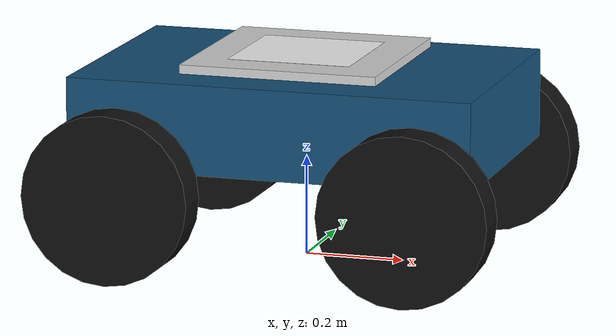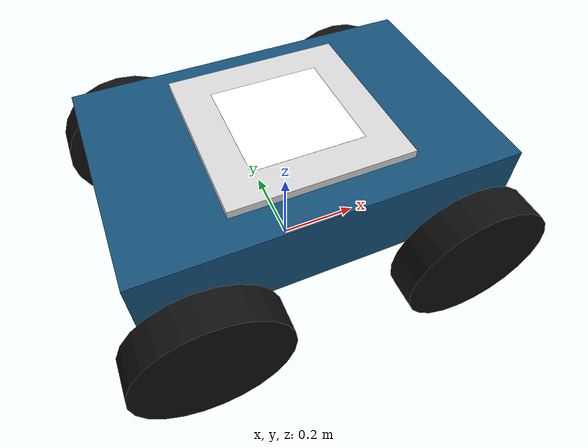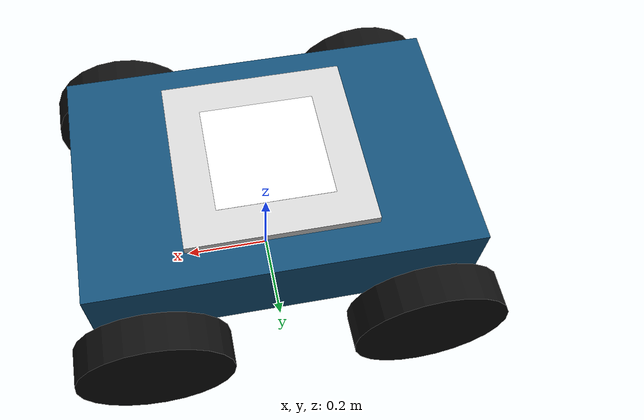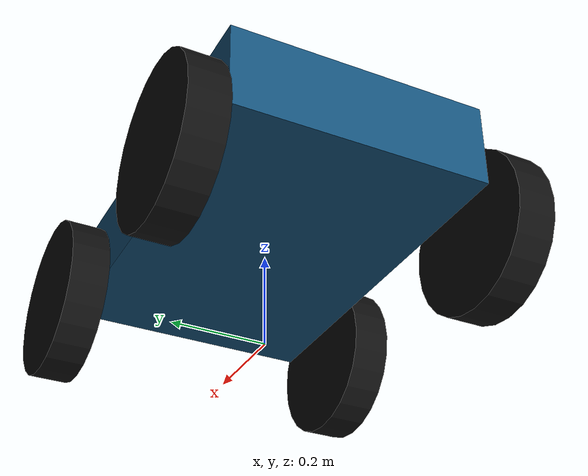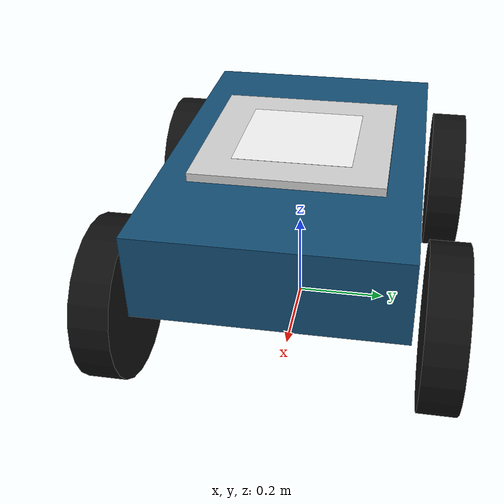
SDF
<?xml version="1.0"?>
<sdf version="1.9">
  <model name="ground_vehicle">
    <pose>0 0 0 0 0 0</pose>

    <link name="base_link">
      <!-- Keep the body collision 40 mm above the ground so the wheels, not
           the chassis belly, carry the vehicle and generate traction. -->
      <pose>0 0 0.30 0 0 0</pose>
      <inertial>
        <mass>18.0</mass>
        <inertia>
          <ixx>0.65</ixx><iyy>1.10</iyy><izz>1.35</izz>
        </inertia>
      </inertial>
      <collision name="body_collision">
        <geometry><box><size>0.82 0.54 0.18</size></box></geometry>
      </collision>
      <visual name="body_visual">
        <geometry><box><size>0.82 0.54 0.18</size></box></geometry>
        <material>
          <ambient>0.05 0.18 0.28 1</ambient>
          <diffuse>0.08 0.32 0.48 1</diffuse>
        </material>
      </visual>
      <visual name="landing_pad">
        <pose>0 0 0.105 0 0 0</pose>
        <geometry><box><size>0.40 0.40 0.018</size></box></geometry>
        <material>
          <ambient>0.75 0.75 0.75 1</ambient>
          <diffuse>0.85 0.85 0.85 1</diffuse>
        </material>
      </visual>
      <!-- Physical target shown in the supplied reference photo:
           tag36h11 ID 0, 200 mm black edge plus a 25 mm white quiet
           border on every side, for a 250 x 250 mm printed board. -->
      <visual name="apriltag_id0">
        <pose>0 0 0.115 0 0 0</pose>
        <geometry><plane><normal>0 0 1</normal><size>0.25 0.25</size></plane></geometry>
        <material>
          <ambient>1 1 1 1</ambient>
          <diffuse>1 1 1 1</diffuse>
          <specular>0 0 0 1</specular>
          <pbr>
            <metal>
              <albedo_map>model://ground_vehicle/materials/textures/tag36h11_id0.png</albedo_map>
              <metalness>0.0</metalness>
              <roughness>1.0</roughness>
            </metal>
          </pbr>
        </material>
      </visual>
    </link>

    <link name="left_front_wheel">
      <pose>0.30 0.33 0.17 1.57079632679 0 0</pose>
      <inertial><mass>1.0</mass><inertia><ixx>0.015</ixx><iyy>0.015</iyy><izz>0.025</izz></inertia></inertial>
      <collision name="collision"><geometry><cylinder><radius>0.17</radius><length>0.08</length></cylinder></geometry><surface><friction><ode><mu>1.2</mu><mu2>1.2</mu2></ode></friction></surface></collision>
      <visual name="visual"><geometry><cylinder><radius>0.17</radius><length>0.08</length></cylinder></geometry><material><ambient>0.03 0.03 0.03 1</ambient><diffuse>0.06 0.06 0.06 1</diffuse></material></visual>
    </link>
    <link name="left_rear_wheel">
      <pose>-0.30 0.33 0.17 1.57079632679 0 0</pose>
      <inertial><mass>1.0</mass><inertia><ixx>0.015</ixx><iyy>0.015</iyy><izz>0.025</izz></inertia></inertial>
      <collision name="collision"><geometry><cylinder><radius>0.17</radius><length>0.08</length></cylinder></geometry><surface><friction><ode><mu>1.2</mu><mu2>1.2</mu2></ode></friction></surface></collision>
      <visual name="visual"><geometry><cylinder><radius>0.17</radius><length>0.08</length></cylinder></geometry><material><ambient>0.03 0.03 0.03 1</ambient><diffuse>0.06 0.06 0.06 1</diffuse></material></visual>
    </link>
    <link name="right_front_wheel">
      <pose>0.30 -0.33 0.17 1.57079632679 0 0</pose>
      <inertial><mass>1.0</mass><inertia><ixx>0.015</ixx><iyy>0.015</iyy><izz>0.025</izz></inertia></inertial>
      <collision name="collision"><geometry><cylinder><radius>0.17</radius><length>0.08</length></cylinder></geometry><surface><friction><ode><mu>1.2</mu><mu2>1.2</mu2></ode></friction></surface></collision>
      <visual name="visual"><geometry><cylinder><radius>0.17</radius><length>0.08</length></cylinder></geometry><material><ambient>0.03 0.03 0.03 1</ambient><diffuse>0.06 0.06 0.06 1</diffuse></material></visual>
    </link>
    <link name="right_rear_wheel">
      <pose>-0.30 -0.33 0.17 1.57079632679 0 0</pose>
      <inertial><mass>1.0</mass><inertia><ixx>0.015</ixx><iyy>0.015</iyy><izz>0.025</izz></inertia></inertial>
      <collision name="collision"><geometry><cylinder><radius>0.17</radius><length>0.08</length></cylinder></geometry><surface><friction><ode><mu>1.2</mu><mu2>1.2</mu2></ode></friction></surface></collision>
      <visual name="visual"><geometry><cylinder><radius>0.17</radius><length>0.08</length></cylinder></geometry><material><ambient>0.03 0.03 0.03 1</ambient><diffuse>0.06 0.06 0.06 1</diffuse></material></visual>
    </link>

    <!-- Joint axes are expressed in each rotated wheel frame.  Local Z is the
         axle direction after the 90-degree wheel-link roll. -->
    <joint name="left_front_joint" type="revolute">
      <parent>base_link</parent><child>left_front_wheel</child>
      <axis><xyz>0 0 1</xyz><limit><lower>-1.0e16</lower><upper>1.0e16</upper></limit></axis>
    </joint>
    <joint name="left_rear_joint" type="revolute">
      <parent>base_link</parent><child>left_rear_wheel</child>
      <axis><xyz>0 0 1</xyz><limit><lower>-1.0e16</lower><upper>1.0e16</upper></limit></axis>
    </joint>
    <joint name="right_front_joint" type="revolute">
      <parent>base_link</parent><child>right_front_wheel</child>
      <axis><xyz>0 0 1</xyz><limit><lower>-1.0e16</lower><upper>1.0e16</upper></limit></axis>
    </joint>
    <joint name="right_rear_joint" type="revolute">
      <parent>base_link</parent><child>right_rear_wheel</child>
      <axis><xyz>0 0 1</xyz><limit><lower>-1.0e16</lower><upper>1.0e16</upper></limit></axis>
    </joint>

    <plugin filename="gz-sim-diff-drive-system" name="gz::sim::systems::DiffDrive">
      <left_joint>left_front_joint</left_joint>
      <left_joint>left_rear_joint</left_joint>
      <right_joint>right_front_joint</right_joint>
      <right_joint>right_rear_joint</right_joint>
      <wheel_separation>0.66</wheel_separation>
      <wheel_radius>0.17</wheel_radius>
      <topic>/model/ground_vehicle/cmd_vel</topic>
      <odom_topic>/model/ground_vehicle/odometry</odom_topic>
      <tf_topic>/model/ground_vehicle/tf</tf_topic>
      <frame_id>odom</frame_id>
      <child_frame_id>ugv_base_link</child_frame_id>
      <odom_publish_frequency>30</odom_publish_frequency>
      <max_linear_acceleration>1.0</max_linear_acceleration>
      <max_angular_acceleration>1.5</max_angular_acceleration>
    </plugin>
  </model>
</sdf>
